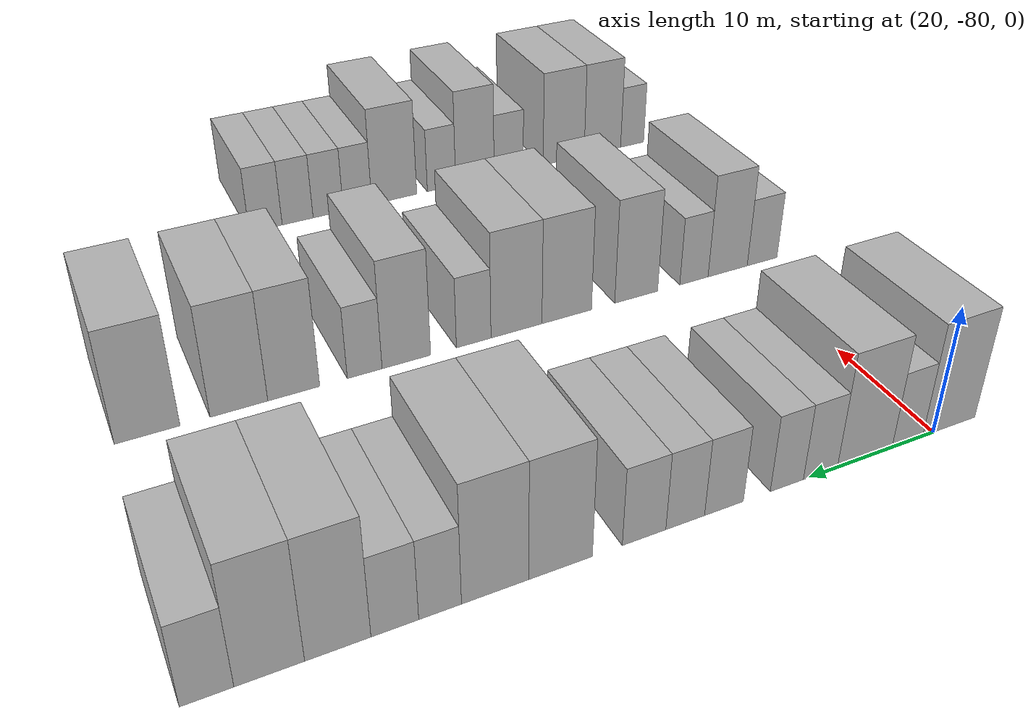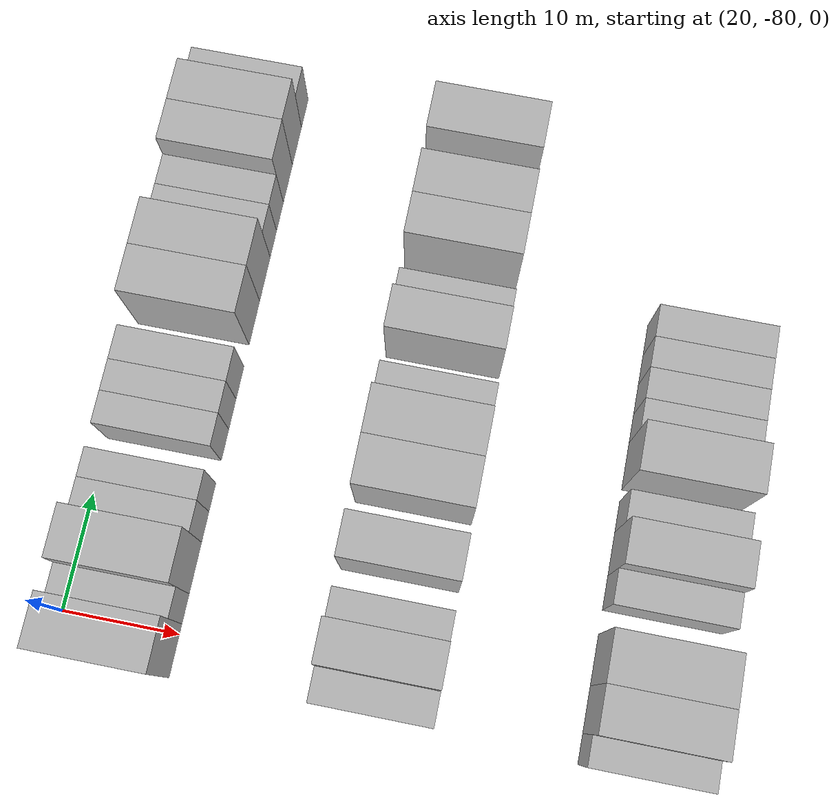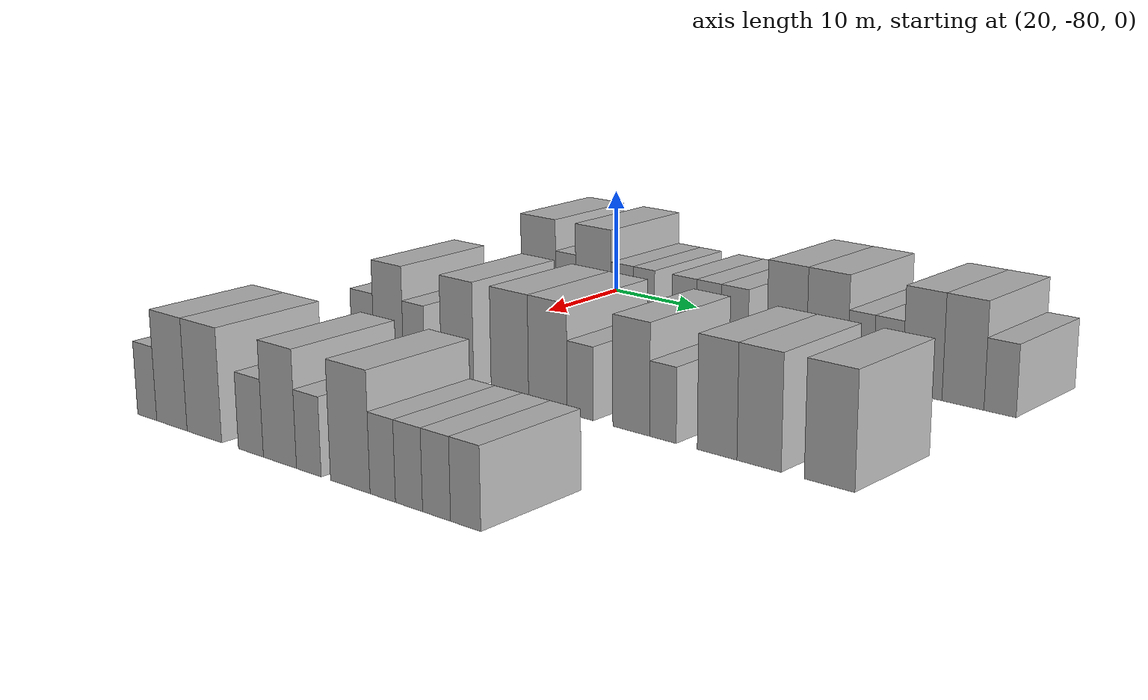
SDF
<sdf version="1.6">
 <world name="default">
  <model name="building_73">
   <static>1</static>
   <pose>25.0000 -81.3337 0 0.000000 0.000000 0.000000</pose>
   <link name="link">
    <pose>0 0 4.50 0 0 0</pose>
    <collision name="collision"><geometry><box><size>10.0000 4.4401 9.0000</size></box></geometry></collision>
    <visual name="visual">
     <cast_shadows>0</cast_shadows>
     <geometry><box><size>10.0000 4.4401 9.0000</size></box></geometry>
     <material>
      <script>
       <uri>model://HANNAS_wall/materials/scripts</uri>
       <uri>model://HANNAS_wall/materials/textures</uri>
       <name>vrc/HANNAS_wall</name>
      </script>
     </material>
    </visual>
   </link>
  </model>
  <model name="building_74">
   <static>1</static>
   <pose>25.0000 -77.8510 0 0.000000 0.000000 0.000000</pose>
   <link name="link">
    <pose>0 0 3.00 0 0 0</pose>
    <collision name="collision"><geometry><box><size>10.0000 2.5253 6.0000</size></box></geometry></collision>
    <visual name="visual">
     <cast_shadows>0</cast_shadows>
     <geometry><box><size>10.0000 2.5253 6.0000</size></box></geometry>
     <material>
      <script>
       <uri>model://HANNAS_wall/materials/scripts</uri>
       <uri>model://HANNAS_wall/materials/textures</uri>
       <name>vrc/HANNAS_wall</name>
      </script>
     </material>
    </visual>
   </link>
  </model>
  <model name="building_75">
   <static>1</static>
   <pose>25.0000 -74.3965 0 0.000000 0.000000 0.000000</pose>
   <link name="link">
    <pose>0 0 4.50 0 0 0</pose>
    <collision name="collision"><geometry><box><size>10.0000 4.3838 9.0000</size></box></geometry></collision>
    <visual name="visual">
     <cast_shadows>0</cast_shadows>
     <geometry><box><size>10.0000 4.3838 9.0000</size></box></geometry>
     <material>
      <script>
       <uri>model://HANNAS_wall/materials/scripts</uri>
       <uri>model://HANNAS_wall/materials/textures</uri>
       <name>vrc/HANNAS_wall</name>
      </script>
     </material>
    </visual>
   </link>
  </model>
  <model name="building_76">
   <static>1</static>
   <pose>25.0000 -70.8849 0 0.000000 0.000000 0.000000</pose>
   <link name="link">
    <pose>0 0 3.00 0 0 0</pose>
    <collision name="collision"><geometry><box><size>10.0000 2.6394 6.0000</size></box></geometry></collision>
    <visual name="visual">
     <cast_shadows>0</cast_shadows>
     <geometry><box><size>10.0000 2.6394 6.0000</size></box></geometry>
     <material>
      <script>
       <uri>model://HANNAS_wall/materials/scripts</uri>
       <uri>model://HANNAS_wall/materials/textures</uri>
       <name>vrc/HANNAS_wall</name>
      </script>
     </material>
    </visual>
   </link>
  </model>
  <model name="building_77">
   <static>1</static>
   <pose>25.0000 -68.3097 0 0.000000 0.000000 0.000000</pose>
   <link name="link">
    <pose>0 0 3.00 0 0 0</pose>
    <collision name="collision"><geometry><box><size>10.0000 2.5110 6.0000</size></box></geometry></collision>
    <visual name="visual">
     <cast_shadows>0</cast_shadows>
     <geometry><box><size>10.0000 2.5110 6.0000</size></box></geometry>
     <material>
      <script>
       <uri>model://HANNAS_wall/materials/scripts</uri>
       <uri>model://HANNAS_wall/materials/textures</uri>
       <name>vrc/HANNAS_wall</name>
      </script>
     </material>
    </visual>
   </link>
  </model>
  <model name="building_78">
   <static>1</static>
   <pose>25.0000 -63.6502 0 0.000000 0.000000 0.000000</pose>
   <link name="link">
    <pose>0 0 3.00 0 0 0</pose>
    <collision name="collision"><geometry><box><size>10.0000 2.8079 6.0000</size></box></geometry></collision>
    <visual name="visual">
     <cast_shadows>0</cast_shadows>
     <geometry><box><size>10.0000 2.8079 6.0000</size></box></geometry>
     <material>
      <script>
       <uri>model://HANNAS_wall/materials/scripts</uri>
       <uri>model://HANNAS_wall/materials/textures</uri>
       <name>vrc/HANNAS_wall</name>
      </script>
     </material>
    </visual>
   </link>
  </model>
  <model name="building_79">
   <static>1</static>
   <pose>25.0000 -60.8801 0 0.000000 0.000000 0.000000</pose>
   <link name="link">
    <pose>0 0 3.00 0 0 0</pose>
    <collision name="collision"><geometry><box><size>10.0000 2.7323 6.0000</size></box></geometry></collision>
    <visual name="visual">
     <cast_shadows>0</cast_shadows>
     <geometry><box><size>10.0000 2.7323 6.0000</size></box></geometry>
     <material>
      <script>
       <uri>model://HANNAS_wall/materials/scripts</uri>
       <uri>model://HANNAS_wall/materials/textures</uri>
       <name>vrc/HANNAS_wall</name>
      </script>
     </material>
    </visual>
   </link>
  </model>
  <model name="building_80">
   <static>1</static>
   <pose>25.0000 -58.0221 0 0.000000 0.000000 0.000000</pose>
   <link name="link">
    <pose>0 0 3.00 0 0 0</pose>
    <collision name="collision"><geometry><box><size>10.0000 2.9838 6.0000</size></box></geometry></collision>
    <visual name="visual">
     <cast_shadows>0</cast_shadows>
     <geometry><box><size>10.0000 2.9838 6.0000</size></box></geometry>
     <material>
      <script>
       <uri>model://HANNAS_wall/materials/scripts</uri>
       <uri>model://HANNAS_wall/materials/textures</uri>
       <name>vrc/HANNAS_wall</name>
      </script>
     </material>
    </visual>
   </link>
  </model>
  <model name="building_81">
   <static>1</static>
   <pose>25.0000 -52.4625 0 0.000000 0.000000 0.000000</pose>
   <link name="link">
    <pose>0 0 4.50 0 0 0</pose>
    <collision name="collision"><geometry><box><size>10.0000 4.1354 9.0000</size></box></geometry></collision>
    <visual name="visual">
     <cast_shadows>0</cast_shadows>
     <geometry><box><size>10.0000 4.1354 9.0000</size></box></geometry>
     <material>
      <script>
       <uri>model://HANNAS_wall/materials/scripts</uri>
       <uri>model://HANNAS_wall/materials/textures</uri>
       <name>vrc/HANNAS_wall</name>
      </script>
     </material>
    </visual>
   </link>
  </model>
  <model name="building_82">
   <static>1</static>
   <pose>25.0000 -48.3096 0 0.000000 0.000000 0.000000</pose>
   <link name="link">
    <pose>0 0 4.50 0 0 0</pose>
    <collision name="collision"><geometry><box><size>10.0000 4.1704 9.0000</size></box></geometry></collision>
    <visual name="visual">
     <cast_shadows>0</cast_shadows>
     <geometry><box><size>10.0000 4.1704 9.0000</size></box></geometry>
     <material>
      <script>
       <uri>model://HANNAS_wall/materials/scripts</uri>
       <uri>model://HANNAS_wall/materials/textures</uri>
       <name>vrc/HANNAS_wall</name>
      </script>
     </material>
    </visual>
   </link>
  </model>
  <model name="building_83">
   <static>1</static>
   <pose>25.0000 -44.9430 0 0.000000 0.000000 0.000000</pose>
   <link name="link">
    <pose>0 0 3.00 0 0 0</pose>
    <collision name="collision"><geometry><box><size>10.0000 2.5627 6.0000</size></box></geometry></collision>
    <visual name="visual">
     <cast_shadows>0</cast_shadows>
     <geometry><box><size>10.0000 2.5627 6.0000</size></box></geometry>
     <material>
      <script>
       <uri>model://HANNAS_wall/materials/scripts</uri>
       <uri>model://HANNAS_wall/materials/textures</uri>
       <name>vrc/HANNAS_wall</name>
      </script>
     </material>
    </visual>
   </link>
  </model>
  <model name="building_84">
   <static>1</static>
   <pose>25.0000 -42.2696 0 0.000000 0.000000 0.000000</pose>
   <link name="link">
    <pose>0 0 3.00 0 0 0</pose>
    <collision name="collision"><geometry><box><size>10.0000 2.7843 6.0000</size></box></geometry></collision>
    <visual name="visual">
     <cast_shadows>0</cast_shadows>
     <geometry><box><size>10.0000 2.7843 6.0000</size></box></geometry>
     <material>
      <script>
       <uri>model://HANNAS_wall/materials/scripts</uri>
       <uri>model://HANNAS_wall/materials/textures</uri>
       <name>vrc/HANNAS_wall</name>
      </script>
     </material>
    </visual>
   </link>
  </model>
  <model name="building_85">
   <static>1</static>
   <pose>25.0000 -39.0115 0 0.000000 0.000000 0.000000</pose>
   <link name="link">
    <pose>0 0 4.50 0 0 0</pose>
    <collision name="collision"><geometry><box><size>10.0000 3.7319 9.0000</size></box></geometry></collision>
    <visual name="visual">
     <cast_shadows>0</cast_shadows>
     <geometry><box><size>10.0000 3.7319 9.0000</size></box></geometry>
     <material>
      <script>
       <uri>model://HANNAS_wall/materials/scripts</uri>
       <uri>model://HANNAS_wall/materials/textures</uri>
       <name>vrc/HANNAS_wall</name>
      </script>
     </material>
    </visual>
   </link>
  </model>
  <model name="building_86">
   <static>1</static>
   <pose>25.0000 -35.2371 0 0.000000 0.000000 0.000000</pose>
   <link name="link">
    <pose>0 0 4.50 0 0 0</pose>
    <collision name="collision"><geometry><box><size>10.0000 3.8169 9.0000</size></box></geometry></collision>
    <visual name="visual">
     <cast_shadows>0</cast_shadows>
     <geometry><box><size>10.0000 3.8169 9.0000</size></box></geometry>
     <material>
      <script>
       <uri>model://HANNAS_wall/materials/scripts</uri>
       <uri>model://HANNAS_wall/materials/textures</uri>
       <name>vrc/HANNAS_wall</name>
      </script>
     </material>
    </visual>
   </link>
  </model>
  <model name="building_87">
   <static>1</static>
   <pose>25.0000 -31.9062 0 0.000000 0.000000 0.000000</pose>
   <link name="link">
    <pose>0 0 3.00 0 0 0</pose>
    <collision name="collision"><geometry><box><size>10.0000 2.8450 6.0000</size></box></geometry></collision>
    <visual name="visual">
     <cast_shadows>0</cast_shadows>
     <geometry><box><size>10.0000 2.8450 6.0000</size></box></geometry>
     <material>
      <script>
       <uri>model://HANNAS_wall/materials/scripts</uri>
       <uri>model://HANNAS_wall/materials/textures</uri>
       <name>vrc/HANNAS_wall</name>
      </script>
     </material>
    </visual>
   </link>
  </model>
  <model name="building_263">
   <static>1</static>
   <pose>47.0000 -81.8355 0 0.000000 0.000000 0.000000</pose>
   <link name="link">
    <pose>0 0 3.00 0 0 0</pose>
    <collision name="collision"><geometry><box><size>10.0000 2.8560 6.0000</size></box></geometry></collision>
    <visual name="visual">
     <cast_shadows>0</cast_shadows>
     <geometry><box><size>10.0000 2.8560 6.0000</size></box></geometry>
     <material>
      <script>
       <uri>model://HANNAS_wall/materials/scripts</uri>
       <uri>model://HANNAS_wall/materials/textures</uri>
       <name>vrc/HANNAS_wall</name>
      </script>
     </material>
    </visual>
   </link>
  </model>
  <model name="building_264">
   <static>1</static>
   <pose>47.0000 -78.5680 0 0.000000 0.000000 0.000000</pose>
   <link name="link">
    <pose>0 0 4.50 0 0 0</pose>
    <collision name="collision"><geometry><box><size>10.0000 3.6789 9.0000</size></box></geometry></collision>
    <visual name="visual">
     <cast_shadows>0</cast_shadows>
     <geometry><box><size>10.0000 3.6789 9.0000</size></box></geometry>
     <material>
      <script>
       <uri>model://HANNAS_wall/materials/scripts</uri>
       <uri>model://HANNAS_wall/materials/textures</uri>
       <name>vrc/HANNAS_wall</name>
      </script>
     </material>
    </visual>
   </link>
  </model>
  <model name="building_265">
   <static>1</static>
   <pose>47.0000 -75.4325 0 0.000000 0.000000 0.000000</pose>
   <link name="link">
    <pose>0 0 3.00 0 0 0</pose>
    <collision name="collision"><geometry><box><size>10.0000 2.5922 6.0000</size></box></geometry></collision>
    <visual name="visual">
     <cast_shadows>0</cast_shadows>
     <geometry><box><size>10.0000 2.5922 6.0000</size></box></geometry>
     <material>
      <script>
       <uri>model://HANNAS_wall/materials/scripts</uri>
       <uri>model://HANNAS_wall/materials/textures</uri>
       <name>vrc/HANNAS_wall</name>
      </script>
     </material>
    </visual>
   </link>
  </model>
  <model name="building_266">
   <static>1</static>
   <pose>47.0000 -70.2462 0 0.000000 0.000000 0.000000</pose>
   <link name="link">
    <pose>0 0 4.50 0 0 0</pose>
    <collision name="collision"><geometry><box><size>10.0000 3.7803 9.0000</size></box></geometry></collision>
    <visual name="visual">
     <cast_shadows>0</cast_shadows>
     <geometry><box><size>10.0000 3.7803 9.0000</size></box></geometry>
     <material>
      <script>
       <uri>model://HANNAS_wall/materials/scripts</uri>
       <uri>model://HANNAS_wall/materials/textures</uri>
       <name>vrc/HANNAS_wall</name>
      </script>
     </material>
    </visual>
   </link>
  </model>
  <model name="building_267">
   <static>1</static>
   <pose>47.0000 -64.2700 0 0.000000 0.000000 0.000000</pose>
   <link name="link">
    <pose>0 0 4.50 0 0 0</pose>
    <collision name="collision"><geometry><box><size>10.0000 4.1722 9.0000</size></box></geometry></collision>
    <visual name="visual">
     <cast_shadows>0</cast_shadows>
     <geometry><box><size>10.0000 4.1722 9.0000</size></box></geometry>
     <material>
      <script>
       <uri>model://HANNAS_wall/materials/scripts</uri>
       <uri>model://HANNAS_wall/materials/textures</uri>
       <name>vrc/HANNAS_wall</name>
      </script>
     </material>
    </visual>
   </link>
  </model>
  <model name="building_268">
   <static>1</static>
   <pose>47.0000 -60.1114 0 0.000000 0.000000 0.000000</pose>
   <link name="link">
    <pose>0 0 4.50 0 0 0</pose>
    <collision name="collision"><geometry><box><size>10.0000 4.1449 9.0000</size></box></geometry></collision>
    <visual name="visual">
     <cast_shadows>0</cast_shadows>
     <geometry><box><size>10.0000 4.1449 9.0000</size></box></geometry>
     <material>
      <script>
       <uri>model://HANNAS_wall/materials/scripts</uri>
       <uri>model://HANNAS_wall/materials/textures</uri>
       <name>vrc/HANNAS_wall</name>
      </script>
     </material>
    </visual>
   </link>
  </model>
  <model name="building_269">
   <static>1</static>
   <pose>47.0000 -56.6689 0 0.000000 0.000000 0.000000</pose>
   <link name="link">
    <pose>0 0 3.00 0 0 0</pose>
    <collision name="collision"><geometry><box><size>10.0000 2.7401 6.0000</size></box></geometry></collision>
    <visual name="visual">
     <cast_shadows>0</cast_shadows>
     <geometry><box><size>10.0000 2.7401 6.0000</size></box></geometry>
     <material>
      <script>
       <uri>model://HANNAS_wall/materials/scripts</uri>
       <uri>model://HANNAS_wall/materials/textures</uri>
       <name>vrc/HANNAS_wall</name>
      </script>
     </material>
    </visual>
   </link>
  </model>
  <model name="building_270">
   <static>1</static>
   <pose>47.0000 -51.4565 0 0.000000 0.000000 0.000000</pose>
   <link name="link">
    <pose>0 0 4.50 0 0 0</pose>
    <collision name="collision"><geometry><box><size>10.0000 3.6847 9.0000</size></box></geometry></collision>
    <visual name="visual">
     <cast_shadows>0</cast_shadows>
     <geometry><box><size>10.0000 3.6847 9.0000</size></box></geometry>
     <material>
      <script>
       <uri>model://HANNAS_wall/materials/scripts</uri>
       <uri>model://HANNAS_wall/materials/textures</uri>
       <name>vrc/HANNAS_wall</name>
      </script>
     </material>
    </visual>
   </link>
  </model>
  <model name="building_271">
   <static>1</static>
   <pose>47.0000 -48.3287 0 0.000000 0.000000 0.000000</pose>
   <link name="link">
    <pose>0 0 3.00 0 0 0</pose>
    <collision name="collision"><geometry><box><size>10.0000 2.5707 6.0000</size></box></geometry></collision>
    <visual name="visual">
     <cast_shadows>0</cast_shadows>
     <geometry><box><size>10.0000 2.5707 6.0000</size></box></geometry>
     <material>
      <script>
       <uri>model://HANNAS_wall/materials/scripts</uri>
       <uri>model://HANNAS_wall/materials/textures</uri>
       <name>vrc/HANNAS_wall</name>
      </script>
     </material>
    </visual>
   </link>
  </model>
  <model name="building_272">
   <static>1</static>
   <pose>47.0000 -43.2064 0 0.000000 0.000000 0.000000</pose>
   <link name="link">
    <pose>0 0 4.50 0 0 0</pose>
    <collision name="collision"><geometry><box><size>10.0000 3.6739 9.0000</size></box></geometry></collision>
    <visual name="visual">
     <cast_shadows>0</cast_shadows>
     <geometry><box><size>10.0000 3.6739 9.0000</size></box></geometry>
     <material>
      <script>
       <uri>model://HANNAS_wall/materials/scripts</uri>
       <uri>model://HANNAS_wall/materials/textures</uri>
       <name>vrc/HANNAS_wall</name>
      </script>
     </material>
    </visual>
   </link>
  </model>
  <model name="building_273">
   <static>1</static>
   <pose>47.0000 -39.3895 0 0.000000 0.000000 0.000000</pose>
   <link name="link">
    <pose>0 0 4.50 0 0 0</pose>
    <collision name="collision"><geometry><box><size>10.0000 3.9600 9.0000</size></box></geometry></collision>
    <visual name="visual">
     <cast_shadows>0</cast_shadows>
     <geometry><box><size>10.0000 3.9600 9.0000</size></box></geometry>
     <material>
      <script>
       <uri>model://HANNAS_wall/materials/scripts</uri>
       <uri>model://HANNAS_wall/materials/textures</uri>
       <name>vrc/HANNAS_wall</name>
      </script>
     </material>
    </visual>
   </link>
  </model>
  <model name="building_274">
   <static>1</static>
   <pose>47.0000 -33.2711 0 0.000000 0.000000 0.000000</pose>
   <link name="link">
    <pose>0 0 4.50 0 0 0</pose>
    <collision name="collision"><geometry><box><size>10.0000 4.2769 9.0000</size></box></geometry></collision>
    <visual name="visual">
     <cast_shadows>0</cast_shadows>
     <geometry><box><size>10.0000 4.2769 9.0000</size></box></geometry>
     <material>
      <script>
       <uri>model://HANNAS_wall/materials/scripts</uri>
       <uri>model://HANNAS_wall/materials/textures</uri>
       <name>vrc/HANNAS_wall</name>
      </script>
     </material>
    </visual>
   </link>
  </model>
  <model name="building_452">
   <static>1</static>
   <pose>69.0000 -82.5564 0 0.000000 0.000000 0.000000</pose>
   <link name="link">
    <pose>0 0 3.00 0 0 0</pose>
    <collision name="collision"><geometry><box><size>10.0000 2.4713 6.0000</size></box></geometry></collision>
    <visual name="visual">
     <cast_shadows>0</cast_shadows>
     <geometry><box><size>10.0000 2.4713 6.0000</size></box></geometry>
     <material>
      <script>
       <uri>model://HANNAS_wall/materials/scripts</uri>
       <uri>model://HANNAS_wall/materials/textures</uri>
       <name>vrc/HANNAS_wall</name>
      </script>
     </material>
    </visual>
   </link>
  </model>
  <model name="building_453">
   <static>1</static>
   <pose>69.0000 -79.3956 0 0.000000 0.000000 0.000000</pose>
   <link name="link">
    <pose>0 0 4.50 0 0 0</pose>
    <collision name="collision"><geometry><box><size>10.0000 3.8503 9.0000</size></box></geometry></collision>
    <visual name="visual">
     <cast_shadows>0</cast_shadows>
     <geometry><box><size>10.0000 3.8503 9.0000</size></box></geometry>
     <material>
      <script>
       <uri>model://HANNAS_wall/materials/scripts</uri>
       <uri>model://HANNAS_wall/materials/textures</uri>
       <name>vrc/HANNAS_wall</name>
      </script>
     </material>
    </visual>
   </link>
  </model>
  <model name="building_454">
   <static>1</static>
   <pose>69.0000 -75.3585 0 0.000000 0.000000 0.000000</pose>
   <link name="link">
    <pose>0 0 4.50 0 0 0</pose>
    <collision name="collision"><geometry><box><size>10.0000 4.2240 9.0000</size></box></geometry></collision>
    <visual name="visual">
     <cast_shadows>0</cast_shadows>
     <geometry><box><size>10.0000 4.2240 9.0000</size></box></geometry>
     <material>
      <script>
       <uri>model://HANNAS_wall/materials/scripts</uri>
       <uri>model://HANNAS_wall/materials/textures</uri>
       <name>vrc/HANNAS_wall</name>
      </script>
     </material>
    </visual>
   </link>
  </model>
  <model name="building_455">
   <static>1</static>
   <pose>69.0000 -69.7989 0 0.000000 0.000000 0.000000</pose>
   <link name="link">
    <pose>0 0 3.00 0 0 0</pose>
    <collision name="collision"><geometry><box><size>10.0000 2.8951 6.0000</size></box></geometry></collision>
    <visual name="visual">
     <cast_shadows>0</cast_shadows>
     <geometry><box><size>10.0000 2.8951 6.0000</size></box></geometry>
     <material>
      <script>
       <uri>model://HANNAS_wall/materials/scripts</uri>
       <uri>model://HANNAS_wall/materials/textures</uri>
       <name>vrc/HANNAS_wall</name>
      </script>
     </material>
    </visual>
   </link>
  </model>
  <model name="building_456">
   <static>1</static>
   <pose>69.0000 -66.4843 0 0.000000 0.000000 0.000000</pose>
   <link name="link">
    <pose>0 0 4.50 0 0 0</pose>
    <collision name="collision"><geometry><box><size>10.0000 3.7341 9.0000</size></box></geometry></collision>
    <visual name="visual">
     <cast_shadows>0</cast_shadows>
     <geometry><box><size>10.0000 3.7341 9.0000</size></box></geometry>
     <material>
      <script>
       <uri>model://HANNAS_wall/materials/scripts</uri>
       <uri>model://HANNAS_wall/materials/textures</uri>
       <name>vrc/HANNAS_wall</name>
      </script>
     </material>
    </visual>
   </link>
  </model>
  <model name="building_457">
   <static>1</static>
   <pose>69.0000 -63.2688 0 0.000000 0.000000 0.000000</pose>
   <link name="link">
    <pose>0 0 3.00 0 0 0</pose>
    <collision name="collision"><geometry><box><size>10.0000 2.6969 6.0000</size></box></geometry></collision>
    <visual name="visual">
     <cast_shadows>0</cast_shadows>
     <geometry><box><size>10.0000 2.6969 6.0000</size></box></geometry>
     <material>
      <script>
       <uri>model://HANNAS_wall/materials/scripts</uri>
       <uri>model://HANNAS_wall/materials/textures</uri>
       <name>vrc/HANNAS_wall</name>
      </script>
     </material>
    </visual>
   </link>
  </model>
  <model name="building_458">
   <static>1</static>
   <pose>69.0000 -58.8482 0 0.000000 0.000000 0.000000</pose>
   <link name="link">
    <pose>0 0 4.50 0 0 0</pose>
    <collision name="collision"><geometry><box><size>10.0000 4.1443 9.0000</size></box></geometry></collision>
    <visual name="visual">
     <cast_shadows>0</cast_shadows>
     <geometry><box><size>10.0000 4.1443 9.0000</size></box></geometry>
     <material>
      <script>
       <uri>model://HANNAS_wall/materials/scripts</uri>
       <uri>model://HANNAS_wall/materials/textures</uri>
       <name>vrc/HANNAS_wall</name>
      </script>
     </material>
    </visual>
   </link>
  </model>
  <model name="building_459">
   <static>1</static>
   <pose>69.0000 -55.4904 0 0.000000 0.000000 0.000000</pose>
   <link name="link">
    <pose>0 0 3.00 0 0 0</pose>
    <collision name="collision"><geometry><box><size>10.0000 2.5714 6.0000</size></box></geometry></collision>
    <visual name="visual">
     <cast_shadows>0</cast_shadows>
     <geometry><box><size>10.0000 2.5714 6.0000</size></box></geometry>
     <material>
      <script>
       <uri>model://HANNAS_wall/materials/scripts</uri>
       <uri>model://HANNAS_wall/materials/textures</uri>
       <name>vrc/HANNAS_wall</name>
      </script>
     </material>
    </visual>
   </link>
  </model>
  <model name="building_460">
   <static>1</static>
   <pose>69.0000 -52.8649 0 0.000000 0.000000 0.000000</pose>
   <link name="link">
    <pose>0 0 3.00 0 0 0</pose>
    <collision name="collision"><geometry><box><size>10.0000 2.6795 6.0000</size></box></geometry></collision>
    <visual name="visual">
     <cast_shadows>0</cast_shadows>
     <geometry><box><size>10.0000 2.6795 6.0000</size></box></geometry>
     <material>
      <script>
       <uri>model://HANNAS_wall/materials/scripts</uri>
       <uri>model://HANNAS_wall/materials/textures</uri>
       <name>vrc/HANNAS_wall</name>
      </script>
     </material>
    </visual>
   </link>
  </model>
  <model name="building_461">
   <static>1</static>
   <pose>69.0000 -50.1800 0 0.000000 0.000000 0.000000</pose>
   <link name="link">
    <pose>0 0 3.00 0 0 0</pose>
    <collision name="collision"><geometry><box><size>10.0000 2.6902 6.0000</size></box></geometry></collision>
    <visual name="visual">
     <cast_shadows>0</cast_shadows>
     <geometry><box><size>10.0000 2.6902 6.0000</size></box></geometry>
     <material>
      <script>
       <uri>model://HANNAS_wall/materials/scripts</uri>
       <uri>model://HANNAS_wall/materials/textures</uri>
       <name>vrc/HANNAS_wall</name>
      </script>
     </material>
    </visual>
   </link>
  </model>
  <model name="building_462">
   <static>1</static>
   <pose>69.0000 -47.4248 0 0.000000 0.000000 0.000000</pose>
   <link name="link">
    <pose>0 0 3.00 0 0 0</pose>
    <collision name="collision"><geometry><box><size>10.0000 2.8203 6.0000</size></box></geometry></collision>
    <visual name="visual">
     <cast_shadows>0</cast_shadows>
     <geometry><box><size>10.0000 2.8203 6.0000</size></box></geometry>
     <material>
      <script>
       <uri>model://HANNAS_wall/materials/scripts</uri>
       <uri>model://HANNAS_wall/materials/textures</uri>
       <name>vrc/HANNAS_wall</name>
      </script>
     </material>
    </visual>
   </link>
  </model>
 </world>
</sdf>
